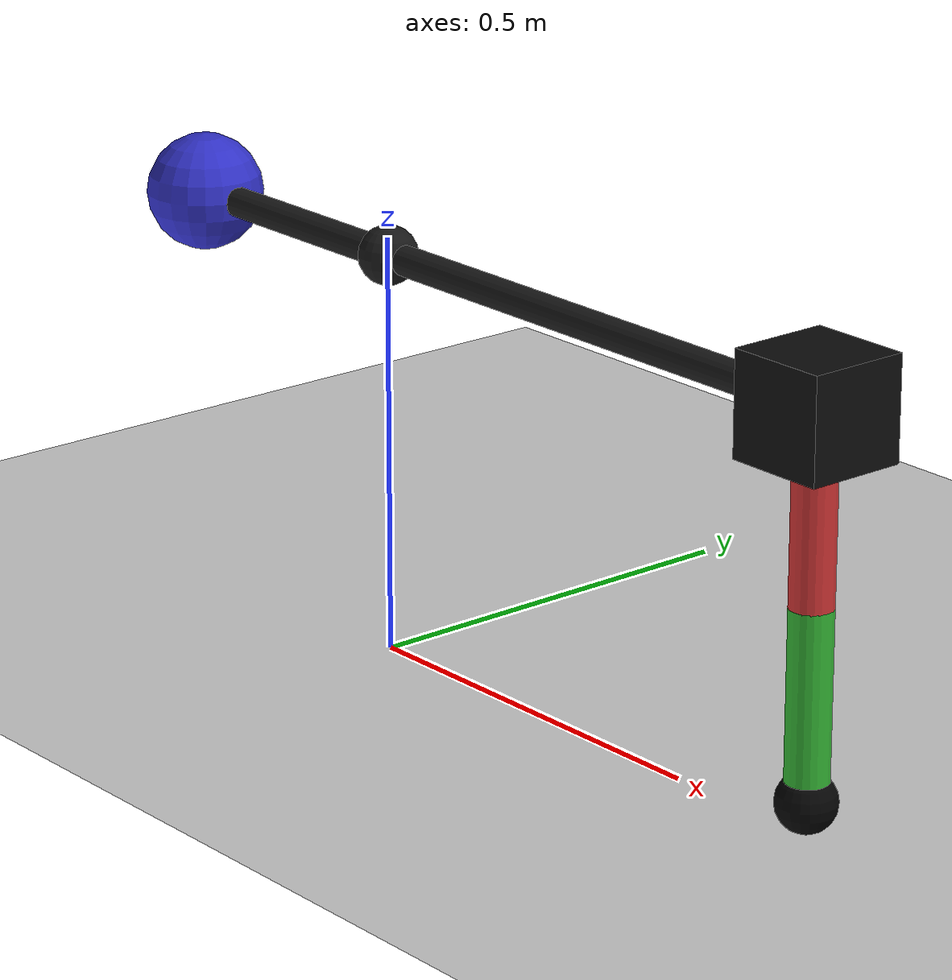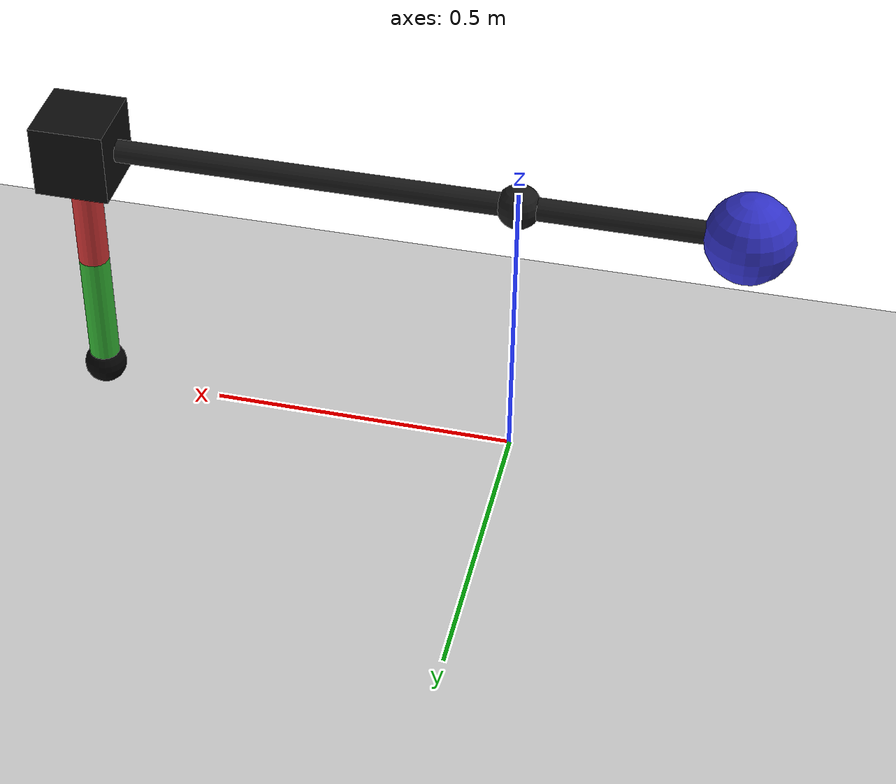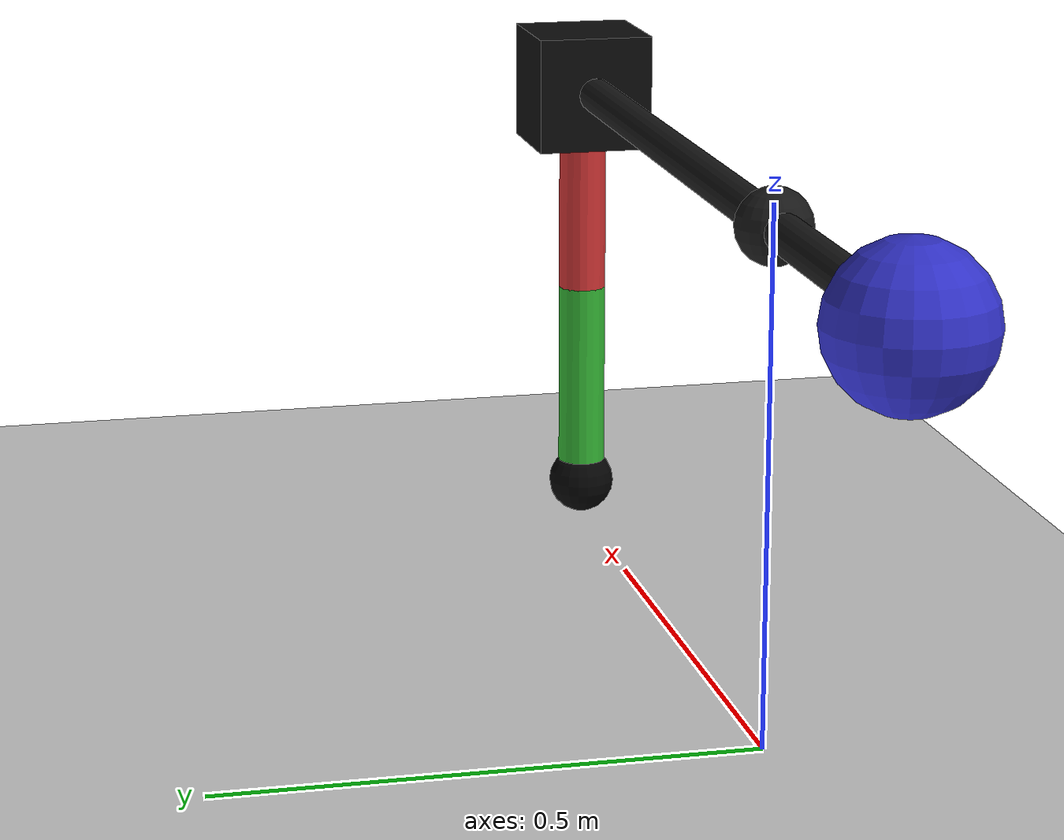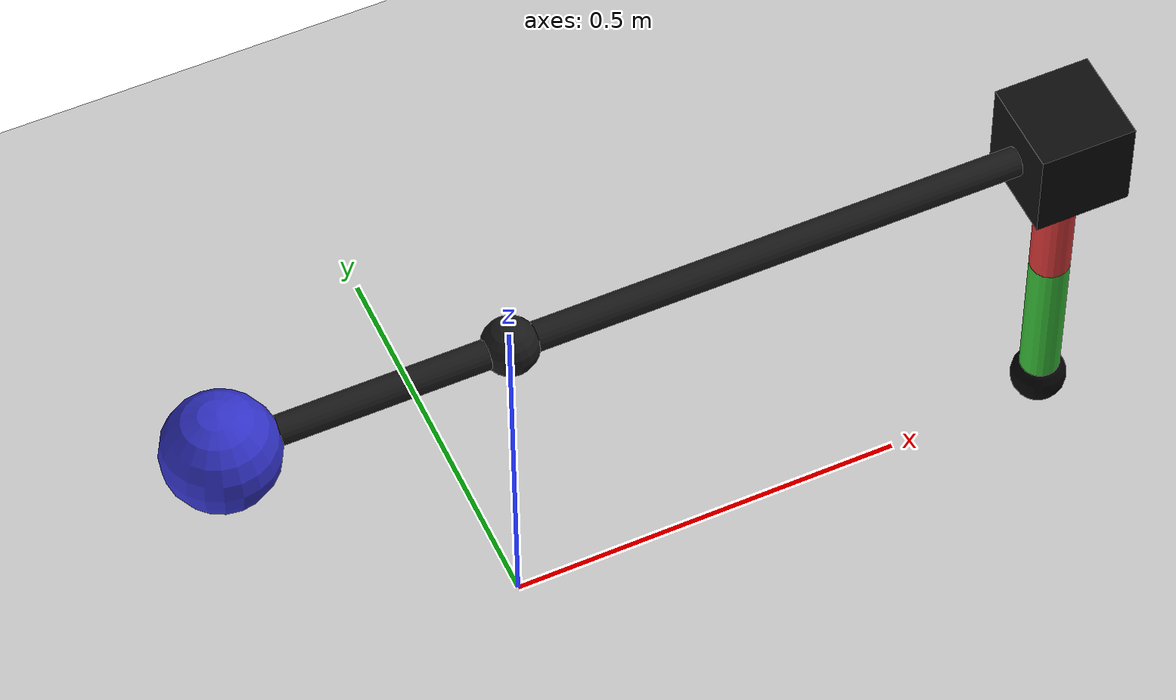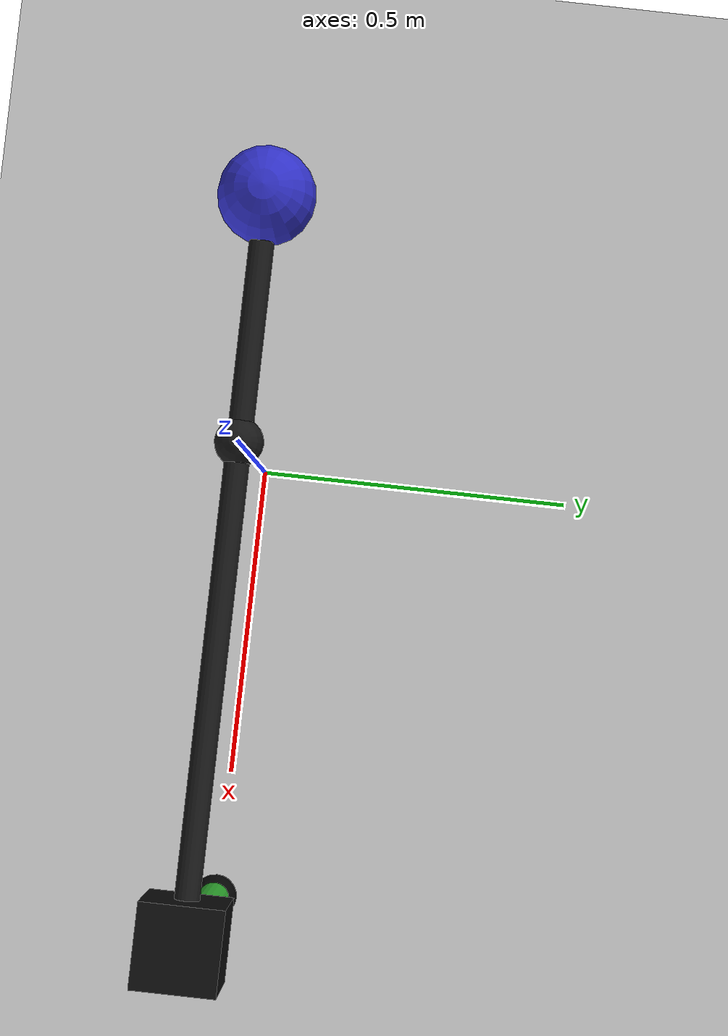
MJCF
<mujoco model="hoppy">
    <compiler angle="radian" coordinate="local"/>

    <option gravity="0 0 -9.81" timestep="0.001" integrator="RK4"
            solver="Newton" iterations="50" tolerance="1e-8"/>

    <default>
        <joint damping="0.02" armature="0.0"/>
        <geom friction="1.5 0.02 0.001" solref="0.01 1" solimp="0.95 0.99 0.001"/>
    </default>

    <worldbody>
        <light pos="0 -3 3" dir="0 1 -1"/>
        <camera name="main_camera" pos="0 -1.6 0.55" xyaxes="1 0 0 0 0 1"/>

        <geom name="floor" type="plane" size="2 2 0.1" rgba="0.8 0.8 0.8 1"/>

        <body name="gantry_yaw_body" pos="0 0 0.48">
            <joint name="gantry_yaw" type="hinge" axis="0 0 1" damping="0.05" armature="0.01"/>
            <geom name="yaw_hub" type="sphere" size="0.035" mass="0.05" rgba="0.1 0.1 0.1 1"/>

            <body name="gantry_pitch_body" pos="0 0 0">
                <joint name="gantry_pitch" type="hinge" axis="0 1 0"
                       limited="true" range="-0.15 0.30"
                       damping="0.12" armature="0.002"/>

                <geom name="gantry_bar" type="capsule"
                      fromto="-0.35 0 0 0.70 0 0"
                      size="0.018" mass="0.12" rgba="0.1 0.1 0.1 1"/>

                <geom name="counterweight" type="sphere" pos="-0.35 0 0"
                      size="0.07" mass="0.35" rgba="0.2 0.2 0.8 1"/>

                <body name="hip_body" pos="0.70 0 0">
                    <joint name="hip" type="hinge" axis="1 0 0"
                           limited="true" range="-1.8 1.8"
                           damping="0.140" armature="0.00507"/>

                    <geom name="hip_motor_mass" type="box" pos="0 0 0"
                          size="0.06 0.06 0.06" mass="0.18"
                          rgba="0.05 0.05 0.05 1"/>

                    <geom name="upper_leg" type="capsule"
                          fromto="0 0 0 0 0 -0.22"
                          size="0.025" mass="0.08"
                          rgba="0.8 0.2 0.2 1"/>

                    <body name="lower_leg_body" pos="0 0 -0.22">
                        <joint name="knee" type="hinge" axis="1 0 0"
                               limited="true" range="-2.4 0.2"
                               damping="0.160" armature="0.00581"
                               stiffness="2.0" springref="-0.7"/>

                        <geom name="lower_leg" type="capsule"
                              fromto="0 0 0 0 0 -0.22"
                              size="0.025" mass="0.08"
                              rgba="0.2 0.7 0.2 1"/>

                        <body name="foot_body" pos="0 0 -0.22">
                            <geom name="foot" type="sphere" size="0.035" mass="0.05"
                                  rgba="0.02 0.02 0.02 1"/>
                            <site name="foot_site" pos="0 0 0" size="0.01" rgba="1 0 0 1"/>
                        </body>
                    </body>
                </body>
            </body>
        </body>
    </worldbody>

    <actuator>
        <motor name="hip_motor" joint="hip" gear="1" ctrllimited="true" ctrlrange="-12.2 12.2"/>
        <motor name="knee_motor" joint="knee" gear="1" ctrllimited="true" ctrlrange="-13 13"/>
    </actuator>

    <keyframe>
        <key name="home" qpos="0 0 0.025 -0.10"/>
    </keyframe>
</mujoco>
